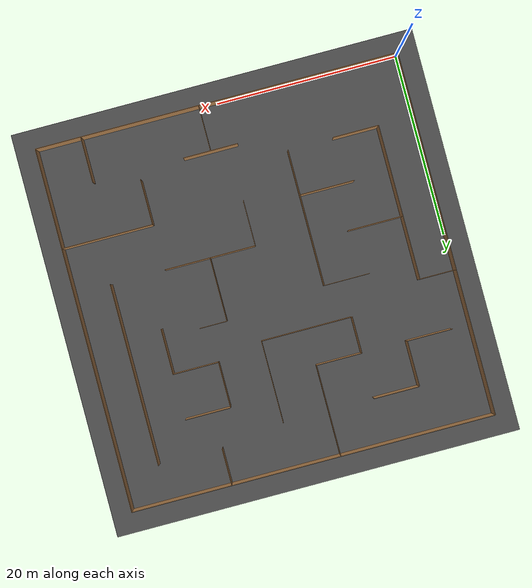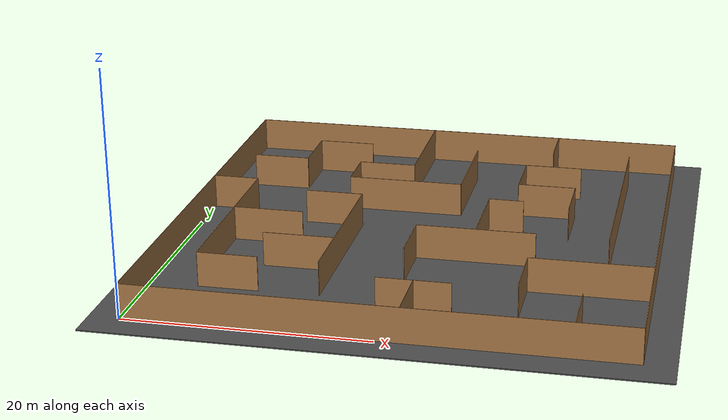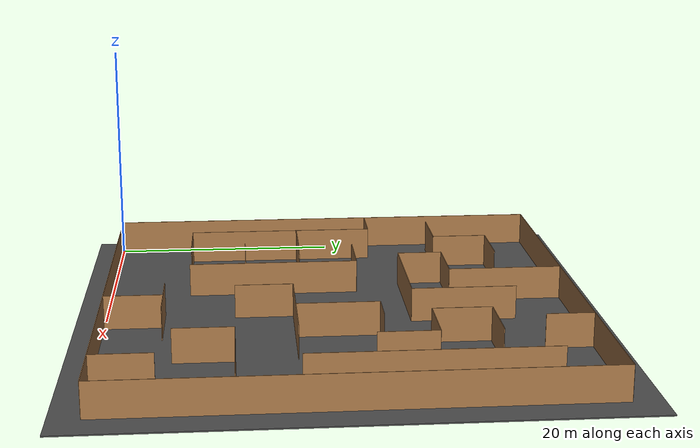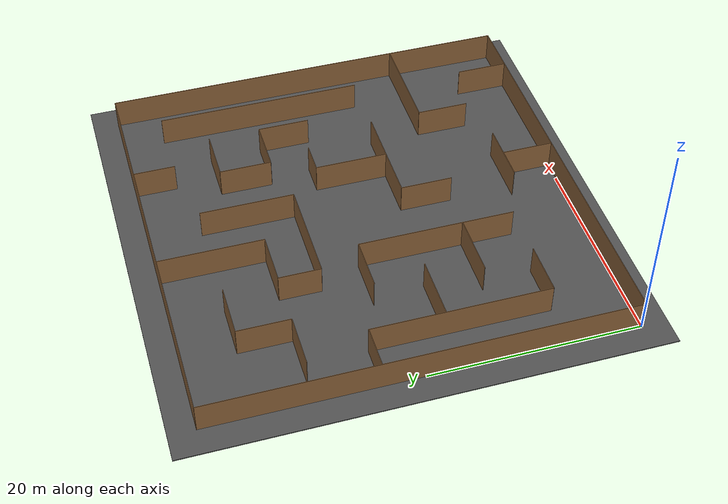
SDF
<sdf version="1.7">
 <world name="default">
  <plugin name="ros_interface_plugin" filename="librotors_gazebo_ros_interface_plugin.so"/>
  <model name="box_34">
   <pose>11 12 1.5 0 0 -3.14159</pose>
   <link name="link">
    <inertial>
     <mass>1</mass>
     <inertia><ixx>0</ixx><ixy>0</ixy><ixz>0</ixz><iyy>0</iyy><iyz>0</iyz><izz>0</izz></inertia>
    </inertial>
    <collision name="collision"><geometry><box><size>6 0.05 3</size></box></geometry></collision>
    <visual name="visual">
     <geometry><box><size>6 0.05 3</size></box></geometry>
     <material>
      <script><name>Gazebo/Wood</name><uri>file://media/materials/scripts/gazebo.material</uri></script>
     </material>
    </visual>
   </link>
   <static>1</static>
  </model>
  <model name="box_33">
   <pose>7 17 1.5 0 -0 0</pose>
   <link name="link">
    <inertial>
     <mass>1</mass>
     <inertia><ixx>0</ixx><ixy>0</ixy><ixz>0</ixz><iyy>0</iyy><iyz>0</iyz><izz>0</izz></inertia>
    </inertial>
    <collision name="collision"><geometry><box><size>6 0.05 3</size></box></geometry></collision>
    <visual name="visual">
     <geometry><box><size>6 0.05 3</size></box></geometry>
     <material>
      <script><name>Gazebo/Wood</name><uri>file://media/materials/scripts/gazebo.material</uri></script>
     </material>
    </visual>
   </link>
   <static>1</static>
  </model>
  <model name="box_32">
   <pose>11.5 22 1.5 0 -0 0</pose>
   <link name="link">
    <inertial>
     <mass>1</mass>
     <inertia><ixx>0</ixx><ixy>0</ixy><ixz>0</ixz><iyy>0</iyy><iyz>0</iyz><izz>0</izz></inertia>
    </inertial>
    <collision name="collision"><geometry><box><size>5 0.05 3</size></box></geometry></collision>
    <visual name="visual">
     <geometry><box><size>5 0.05 3</size></box></geometry>
     <material>
      <script><name>Gazebo/Wood</name><uri>file://media/materials/scripts/gazebo.material</uri></script>
     </material>
    </visual>
   </link>
   <static>1</static>
  </model>
  <model name="box_31">
   <pose>14 14.5 1.5 0 0 -1.5708</pose>
   <link name="link">
    <inertial>
     <mass>1</mass>
     <inertia><ixx>0</ixx><ixy>0</ixy><ixz>0</ixz><iyy>0</iyy><iyz>0</iyz><izz>0</izz></inertia>
    </inertial>
    <collision name="collision"><geometry><box><size>15 0.05 3</size></box></geometry></collision>
    <visual name="visual">
     <geometry><box><size>15 0.05 3</size></box></geometry>
     <material>
      <script><name>Gazebo/Wood</name><uri>file://media/materials/scripts/gazebo.material</uri></script>
     </material>
    </visual>
   </link>
   <static>1</static>
  </model>
  <model name="box_30">
   <pose>6.5 7 1.5 0 0 -3.14159</pose>
   <link name="link">
    <inertial>
     <mass>1</mass>
     <inertia><ixx>0</ixx><ixy>0</ixy><ixz>0</ixz><iyy>0</iyy><iyz>0</iyz><izz>0</izz></inertia>
    </inertial>
    <collision name="collision"><geometry><box><size>5 0.05 3</size></box></geometry></collision>
    <visual name="visual">
     <geometry><box><size>5 0.05 3</size></box></geometry>
     <material>
      <script><name>Gazebo/Wood</name><uri>file://media/materials/scripts/gazebo.material</uri></script>
     </material>
    </visual>
   </link>
   <static>1</static>
  </model>
  <model name="box_29">
   <pose>4 15.5 1.5 0 -0 1.5708</pose>
   <link name="link">
    <inertial>
     <mass>1</mass>
     <inertia><ixx>0</ixx><ixy>0</ixy><ixz>0</ixz><iyy>0</iyy><iyz>0</iyz><izz>0</izz></inertia>
    </inertial>
    <collision name="collision"><geometry><box><size>17 0.05 3</size></box></geometry></collision>
    <visual name="visual">
     <geometry><box><size>17 0.05 3</size></box></geometry>
     <material>
      <script><name>Gazebo/Wood</name><uri>file://media/materials/scripts/gazebo.material</uri></script>
     </material>
    </visual>
   </link>
   <static>1</static>
  </model>
  <model name="box_28">
   <pose>2 24 1.5 0 0 -3.14159</pose>
   <link name="link">
    <inertial>
     <mass>1</mass>
     <inertia><ixx>0</ixx><ixy>0</ixy><ixz>0</ixz><iyy>0</iyy><iyz>0</iyz><izz>0</izz></inertia>
    </inertial>
    <collision name="collision"><geometry><box><size>4 0.05 3</size></box></geometry></collision>
    <visual name="visual">
     <geometry><box><size>4 0.05 3</size></box></geometry>
     <material>
      <script><name>Gazebo/Wood</name><uri>file://media/materials/scripts/gazebo.material</uri></script>
     </material>
    </visual>
   </link>
   <static>1</static>
  </model>
  <model name="box_27">
   <pose>22 5 1.5 0 -0 0</pose>
   <link name="link">
    <inertial>
     <mass>1</mass>
     <inertia><ixx>0</ixx><ixy>0</ixy><ixz>0</ixz><iyy>0</iyy><iyz>0</iyz><izz>0</izz></inertia>
    </inertial>
    <collision name="collision"><geometry><box><size>6 0.05 3</size></box></geometry></collision>
    <visual name="visual">
     <geometry><box><size>6 0.05 3</size></box></geometry>
     <material>
      <script><name>Gazebo/Wood</name><uri>file://media/materials/scripts/gazebo.material</uri></script>
     </material>
    </visual>
   </link>
   <static>1</static>
  </model>
  <model name="box_26">
   <pose>22 2.5 1.5 0 0 -1.5708</pose>
   <link name="link">
    <inertial>
     <mass>1</mass>
     <inertia><ixx>0</ixx><ixy>0</ixy><ixz>0</ixz><iyy>0</iyy><iyz>0</iyz><izz>0</izz></inertia>
    </inertial>
    <collision name="collision"><geometry><box><size>5 0.05 3</size></box></geometry></collision>
    <visual name="visual">
     <geometry><box><size>5 0.05 3</size></box></geometry>
     <material>
      <script><name>Gazebo/Wood</name><uri>file://media/materials/scripts/gazebo.material</uri></script>
     </material>
    </visual>
   </link>
   <static>1</static>
  </model>
  <model name="box_25">
   <pose>35 2.5 1.5 0 0 -1.5708</pose>
   <link name="link">
    <inertial>
     <mass>1</mass>
     <inertia><ixx>0</ixx><ixy>0</ixy><ixz>0</ixz><iyy>0</iyy><iyz>0</iyz><izz>0</izz></inertia>
    </inertial>
    <collision name="collision"><geometry><box><size>5 0.05 3</size></box></geometry></collision>
    <visual name="visual">
     <geometry><box><size>5 0.05 3</size></box></geometry>
     <material>
      <script><name>Gazebo/Wood</name><uri>file://media/materials/scripts/gazebo.material</uri></script>
     </material>
    </visual>
   </link>
   <static>1</static>
  </model>
  <model name="box_24">
   <pose>30 8.5 1.5 0 -0 1.5708</pose>
   <link name="link">
    <inertial>
     <mass>1</mass>
     <inertia><ixx>0</ixx><ixy>0</ixy><ixz>0</ixz><iyy>0</iyy><iyz>0</iyz><izz>0</izz></inertia>
    </inertial>
    <collision name="collision"><geometry><box><size>5 0.05 3</size></box></geometry></collision>
    <visual name="visual">
     <geometry><box><size>5 0.05 3</size></box></geometry>
     <material>
      <script><name>Gazebo/Wood</name><uri>file://media/materials/scripts/gazebo.material</uri></script>
     </material>
    </visual>
   </link>
   <static>1</static>
  </model>
  <model name="box_23">
   <pose>35 11 1.5 0 0 -3.14159</pose>
   <link name="link">
    <inertial>
     <mass>1</mass>
     <inertia><ixx>0</ixx><ixy>0</ixy><ixz>0</ixz><iyy>0</iyy><iyz>0</iyz><izz>0</izz></inertia>
    </inertial>
    <collision name="collision"><geometry><box><size>10 0.05 3</size></box></geometry></collision>
    <visual name="visual">
     <geometry><box><size>10 0.05 3</size></box></geometry>
     <material>
      <script><name>Gazebo/Wood</name><uri>file://media/materials/scripts/gazebo.material</uri></script>
     </material>
    </visual>
   </link>
   <static>1</static>
  </model>
  <model name="box_22">
   <pose>20 13.5 1.5 0 -0 1.5708</pose>
   <link name="link">
    <inertial>
     <mass>1</mass>
     <inertia><ixx>0</ixx><ixy>0</ixy><ixz>0</ixz><iyy>0</iyy><iyz>0</iyz><izz>0</izz></inertia>
    </inertial>
    <collision name="collision"><geometry><box><size>5 0.05 3</size></box></geometry></collision>
    <visual name="visual">
     <geometry><box><size>5 0.05 3</size></box></geometry>
     <material>
      <script><name>Gazebo/Wood</name><uri>file://media/materials/scripts/gazebo.material</uri></script>
     </material>
    </visual>
   </link>
   <static>1</static>
  </model>
  <model name="box_21">
   <pose>26.5 23 1.5 0 0 -3.14159</pose>
   <link name="link">
    <inertial>
     <mass>1</mass>
     <inertia><ixx>0</ixx><ixy>0</ixy><ixz>0</ixz><iyy>0</iyy><iyz>0</iyz><izz>0</izz></inertia>
    </inertial>
    <collision name="collision"><geometry><box><size>3 0.05 3</size></box></geometry></collision>
    <visual name="visual">
     <geometry><box><size>3 0.05 3</size></box></geometry>
     <material>
      <script><name>Gazebo/Wood</name><uri>file://media/materials/scripts/gazebo.material</uri></script>
     </material>
    </visual>
   </link>
   <static>1</static>
  </model>
  <model name="box_20">
   <pose>25 19.5 1.5 0 0 -1.5708</pose>
   <link name="link">
    <inertial>
     <mass>1</mass>
     <inertia><ixx>0</ixx><ixy>0</ixy><ixz>0</ixz><iyy>0</iyy><iyz>0</iyz><izz>0</izz></inertia>
    </inertial>
    <collision name="collision"><geometry><box><size>7 0.05 3</size></box></geometry></collision>
    <visual name="visual">
     <geometry><box><size>7 0.05 3</size></box></geometry>
     <material>
      <script><name>Gazebo/Wood</name><uri>file://media/materials/scripts/gazebo.material</uri></script>
     </material>
    </visual>
   </link>
   <static>1</static>
  </model>
  <model name="box_19">
   <pose>25 16 1.5 0 -0 0</pose>
   <link name="link">
    <inertial>
     <mass>1</mass>
     <inertia><ixx>0</ixx><ixy>0</ixy><ixz>0</ixz><iyy>0</iyy><iyz>0</iyz><izz>0</izz></inertia>
    </inertial>
    <collision name="collision"><geometry><box><size>10 0.05 3</size></box></geometry></collision>
    <visual name="visual">
     <geometry><box><size>10 0.05 3</size></box></geometry>
     <material>
      <script><name>Gazebo/Wood</name><uri>file://media/materials/scripts/gazebo.material</uri></script>
     </material>
    </visual>
   </link>
   <static>1</static>
  </model>
  <model name="box_18">
   <pose>32 24.5 1.5 0 -0 1.5708</pose>
   <link name="link">
    <inertial>
     <mass>1</mass>
     <inertia><ixx>0</ixx><ixy>0</ixy><ixz>0</ixz><iyy>0</iyy><iyz>0</iyz><izz>0</izz></inertia>
    </inertial>
    <collision name="collision"><geometry><box><size>5 0.05 3</size></box></geometry></collision>
    <visual name="visual">
     <geometry><box><size>5 0.05 3</size></box></geometry>
     <material>
      <script><name>Gazebo/Wood</name><uri>file://media/materials/scripts/gazebo.material</uri></script>
     </material>
    </visual>
   </link>
   <static>1</static>
  </model>
  <model name="box_17">
   <pose>29.5 27 1.5 0 0 -3.14159</pose>
   <link name="link">
    <inertial>
     <mass>1</mass>
     <inertia><ixx>0</ixx><ixy>0</ixy><ixz>0</ixz><iyy>0</iyy><iyz>0</iyz><izz>0</izz></inertia>
    </inertial>
    <collision name="collision"><geometry><box><size>5 0.05 3</size></box></geometry></collision>
    <visual name="visual">
     <geometry><box><size>5 0.05 3</size></box></geometry>
     <material>
      <script><name>Gazebo/Wood</name><uri>file://media/materials/scripts/gazebo.material</uri></script>
     </material>
    </visual>
   </link>
   <static>1</static>
  </model>
  <model name="box_16">
   <pose>27 29.5 1.5 0 -0 1.5708</pose>
   <link name="link">
    <inertial>
     <mass>1</mass>
     <inertia><ixx>0</ixx><ixy>0</ixy><ixz>0</ixz><iyy>0</iyy><iyz>0</iyz><izz>0</izz></inertia>
    </inertial>
    <collision name="collision"><geometry><box><size>5 0.05 3</size></box></geometry></collision>
    <visual name="visual">
     <geometry><box><size>5 0.05 3</size></box></geometry>
     <material>
      <script><name>Gazebo/Wood</name><uri>file://media/materials/scripts/gazebo.material</uri></script>
     </material>
    </visual>
   </link>
   <static>1</static>
  </model>
  <model name="box_15">
   <pose>29.5 32 1.5 0 -0 0</pose>
   <link name="link">
    <inertial>
     <mass>1</mass>
     <inertia><ixx>0</ixx><ixy>0</ixy><ixz>0</ixz><iyy>0</iyy><iyz>0</iyz><izz>0</izz></inertia>
    </inertial>
    <collision name="collision"><geometry><box><size>5 0.05 3</size></box></geometry></collision>
    <visual name="visual">
     <geometry><box><size>5 0.05 3</size></box></geometry>
     <material>
      <script><name>Gazebo/Wood</name><uri>file://media/materials/scripts/gazebo.material</uri></script>
     </material>
    </visual>
   </link>
   <static>1</static>
  </model>
  <model name="box_14">
   <pose>22 30.5 1.5 0 0 -1.5708</pose>
   <link name="link">
    <inertial>
     <mass>1</mass>
     <inertia><ixx>0</ixx><ixy>0</ixy><ixz>0</ixz><iyy>0</iyy><iyz>0</iyz><izz>0</izz></inertia>
    </inertial>
    <collision name="collision"><geometry><box><size>9 0.05 3</size></box></geometry></collision>
    <visual name="visual">
     <geometry><box><size>9 0.05 3</size></box></geometry>
     <material>
      <script><name>Gazebo/Wood</name><uri>file://media/materials/scripts/gazebo.material</uri></script>
     </material>
    </visual>
   </link>
   <static>1</static>
  </model>
  <model name="box_13">
   <pose>17 26 1.5 0 0 -3.14159</pose>
   <link name="link">
    <inertial>
     <mass>1</mass>
     <inertia><ixx>0</ixx><ixy>0</ixy><ixz>0</ixz><iyy>0</iyy><iyz>0</iyz><izz>0</izz></inertia>
    </inertial>
    <collision name="collision"><geometry><box><size>10 0.05 3</size></box></geometry></collision>
    <visual name="visual">
     <geometry><box><size>10 0.05 3</size></box></geometry>
     <material>
      <script><name>Gazebo/Wood</name><uri>file://media/materials/scripts/gazebo.material</uri></script>
     </material>
    </visual>
   </link>
   <static>1</static>
  </model>
  <model name="box_12">
   <pose>12 28 1.5 0 -0 1.5708</pose>
   <link name="link">
    <inertial>
     <mass>1</mass>
     <inertia><ixx>0</ixx><ixy>0</ixy><ixz>0</ixz><iyy>0</iyy><iyz>0</iyz><izz>0</izz></inertia>
    </inertial>
    <collision name="collision"><geometry><box><size>4 0.05 3</size></box></geometry></collision>
    <visual name="visual">
     <geometry><box><size>4 0.05 3</size></box></geometry>
     <material>
      <script><name>Gazebo/Wood</name><uri>file://media/materials/scripts/gazebo.material</uri></script>
     </material>
    </visual>
   </link>
   <static>1</static>
  </model>
  <model name="box_11">
   <pose>14.5 30 1.5 0 -0 0</pose>
   <link name="link">
    <inertial>
     <mass>1</mass>
     <inertia><ixx>0</ixx><ixy>0</ixy><ixz>0</ixz><iyy>0</iyy><iyz>0</iyz><izz>0</izz></inertia>
    </inertial>
    <collision name="collision"><geometry><box><size>5 0.05 3</size></box></geometry></collision>
    <visual name="visual">
     <geometry><box><size>5 0.05 3</size></box></geometry>
     <material>
      <script><name>Gazebo/Wood</name><uri>file://media/materials/scripts/gazebo.material</uri></script>
     </material>
    </visual>
   </link>
   <static>1</static>
  </model>
  <model name="box_10">
   <pose>17 35 1.5 0 -0 1.5708</pose>
   <link name="link">
    <inertial>
     <mass>1</mass>
     <inertia><ixx>0</ixx><ixy>0</ixy><ixz>0</ixz><iyy>0</iyy><iyz>0</iyz><izz>0</izz></inertia>
    </inertial>
    <collision name="collision"><geometry><box><size>10 0.05 3</size></box></geometry></collision>
    <visual name="visual">
     <geometry><box><size>10 0.05 3</size></box></geometry>
     <material>
      <script><name>Gazebo/Wood</name><uri>file://media/materials/scripts/gazebo.material</uri></script>
     </material>
    </visual>
   </link>
   <static>1</static>
  </model>
  <model name="box_9">
   <pose>29 38 1.5 0 -0 1.5708</pose>
   <link name="link">
    <inertial>
     <mass>1</mass>
     <inertia><ixx>0</ixx><ixy>0</ixy><ixz>0</ixz><iyy>0</iyy><iyz>0</iyz><izz>0</izz></inertia>
    </inertial>
    <collision name="collision"><geometry><box><size>4 0.05 3</size></box></geometry></collision>
    <visual name="visual">
     <geometry><box><size>4 0.05 3</size></box></geometry>
     <material>
      <script><name>Gazebo/Wood</name><uri>file://media/materials/scripts/gazebo.material</uri></script>
     </material>
    </visual>
   </link>
   <static>1</static>
  </model>
  <model name="box_8">
   <pose>36 26 1.5 0 -0 1.5708</pose>
   <link name="link">
    <inertial>
     <mass>1</mass>
     <inertia><ixx>0</ixx><ixy>0</ixy><ixz>0</ixz><iyy>0</iyy><iyz>0</iyz><izz>0</izz></inertia>
    </inertial>
    <collision name="collision"><geometry><box><size>20 0.05 3</size></box></geometry></collision>
    <visual name="visual">
     <geometry><box><size>20 0.05 3</size></box></geometry>
     <material>
      <script><name>Gazebo/Wood</name><uri>file://media/materials/scripts/gazebo.material</uri></script>
     </material>
    </visual>
   </link>
   <static>1</static>
  </model>
  <model name="box_7">
   <pose>9.5 35 1.5 0 0 -3.14159</pose>
   <link name="link">
    <inertial>
     <mass>1</mass>
     <inertia><ixx>0</ixx><ixy>0</ixy><ixz>0</ixz><iyy>0</iyy><iyz>0</iyz><izz>0</izz></inertia>
    </inertial>
    <collision name="collision"><geometry><box><size>5 0.05 3</size></box></geometry></collision>
    <visual name="visual">
     <geometry><box><size>5 0.05 3</size></box></geometry>
     <material>
      <script><name>Gazebo/Wood</name><uri>file://media/materials/scripts/gazebo.material</uri></script>
     </material>
    </visual>
   </link>
   <static>1</static>
  </model>
  <model name="box_6">
   <pose>7 32.5 1.5 0 0 -1.5708</pose>
   <link name="link">
    <inertial>
     <mass>1</mass>
     <inertia><ixx>0</ixx><ixy>0</ixy><ixz>0</ixz><iyy>0</iyy><iyz>0</iyz><izz>0</izz></inertia>
    </inertial>
    <collision name="collision"><geometry><box><size>5 0.05 3</size></box></geometry></collision>
    <visual name="visual">
     <geometry><box><size>5 0.05 3</size></box></geometry>
     <material>
      <script><name>Gazebo/Wood</name><uri>file://media/materials/scripts/gazebo.material</uri></script>
     </material>
    </visual>
   </link>
   <static>1</static>
  </model>
  <model name="box_5">
   <pose>4.5 30 1.5 0 0 -3.14159</pose>
   <link name="link">
    <inertial>
     <mass>1</mass>
     <inertia><ixx>0</ixx><ixy>0</ixy><ixz>0</ixz><iyy>0</iyy><iyz>0</iyz><izz>0</izz></inertia>
    </inertial>
    <collision name="collision"><geometry><box><size>5 0.05 3</size></box></geometry></collision>
    <visual name="visual">
     <geometry><box><size>5 0.05 3</size></box></geometry>
     <material>
      <script><name>Gazebo/Wood</name><uri>file://media/materials/scripts/gazebo.material</uri></script>
     </material>
    </visual>
   </link>
   <static>1</static>
  </model>
  <model name="box_4">
   <pose>0 20 1.5 0 -0 1.5708</pose>
   <link name="link">
    <inertial>
     <mass>1</mass>
     <inertia><ixx>0</ixx><ixy>0</ixy><ixz>0</ixz><iyy>0</iyy><iyz>0</iyz><izz>0</izz></inertia>
    </inertial>
    <collision name="collision"><geometry><box><size>40 0.05 3</size></box></geometry></collision>
    <visual name="visual">
     <geometry><box><size>40 0.05 3</size></box></geometry>
     <material>
      <script><name>Gazebo/Wood</name><uri>file://media/materials/scripts/gazebo.material</uri></script>
     </material>
    </visual>
   </link>
   <static>1</static>
  </model>
  <model name="box_3">
   <pose>20 40 1.5 0 -0 0</pose>
   <link name="link">
    <inertial>
     <mass>1</mass>
     <inertia><ixx>0</ixx><ixy>0</ixy><ixz>0</ixz><iyy>0</iyy><iyz>0</iyz><izz>0</izz></inertia>
    </inertial>
    <collision name="collision"><geometry><box><size>40 0.05 3</size></box></geometry></collision>
    <visual name="visual">
     <geometry><box><size>40 0.05 3</size></box></geometry>
     <material>
      <script><name>Gazebo/Wood</name><uri>file://media/materials/scripts/gazebo.material</uri></script>
     </material>
    </visual>
   </link>
   <static>1</static>
  </model>
  <model name="box_2">
   <pose>40 20 1.5 0 0 -1.5708</pose>
   <link name="link">
    <inertial>
     <mass>1</mass>
     <inertia><ixx>0</ixx><ixy>0</ixy><ixz>0</ixz><iyy>0</iyy><iyz>0</iyz><izz>0</izz></inertia>
    </inertial>
    <collision name="collision"><geometry><box><size>40 0.05 3</size></box></geometry></collision>
    <visual name="visual">
     <geometry><box><size>40 0.05 3</size></box></geometry>
     <material>
      <script><name>Gazebo/Wood</name><uri>file://media/materials/scripts/gazebo.material</uri></script>
     </material>
    </visual>
   </link>
   <static>1</static>
  </model>
  <model name="box_1">
   <pose>20 0 1.5 0 0 -3.14159</pose>
   <link name="link">
    <inertial>
     <mass>1</mass>
     <inertia><ixx>0</ixx><ixy>0</ixy><ixz>0</ixz><iyy>0</iyy><iyz>0</iyz><izz>0</izz></inertia>
    </inertial>
    <collision name="collision"><geometry><box><size>40 0.05 3</size></box></geometry></collision>
    <visual name="visual">
     <geometry><box><size>40 0.05 3</size></box></geometry>
     <material>
      <script><name>Gazebo/Wood</name><uri>file://media/materials/scripts/gazebo.material</uri></script>
     </material>
    </visual>
   </link>
   <static>1</static>
  </model>
  <light name="user_point_light_0" type="point">
   <pose>0 0 5 0 -0 0</pose>
   <diffuse>0.5 0.5 0.5 1</diffuse>
   <specular>0.1 0.1 0.1 1</specular>
   <attenuation>
    <range>1000</range>
    <constant>0.05</constant>
    <linear>0.01</linear>
    <quadratic>0.001</quadratic>
   </attenuation>
   <cast_shadows>0</cast_shadows>
   <direction>0 0 -1</direction>
   <spot><inner_angle>0</inner_angle><outer_angle>0</outer_angle><falloff>0</falloff></spot>
  </light>
  <light name="user_point_light_1" type="point">
   <pose>20 0 5 0 -0 0</pose>
   <diffuse>0.5 0.5 0.5 1</diffuse>
   <specular>0.1 0.1 0.1 1</specular>
   <attenuation>
    <range>1000</range>
    <constant>0.05</constant>
    <linear>0.01</linear>
    <quadratic>0.001</quadratic>
   </attenuation>
   <cast_shadows>0</cast_shadows>
   <direction>0 0 -1</direction>
   <spot><inner_angle>0</inner_angle><outer_angle>0</outer_angle><falloff>0</falloff></spot>
  </light>
  <light name="user_point_light_2" type="point">
   <pose>0 20 5 0 -0 0</pose>
   <diffuse>0.5 0.5 0.5 1</diffuse>
   <specular>0.1 0.1 0.1 1</specular>
   <attenuation>
    <range>1000</range>
    <constant>0.05</constant>
    <linear>0.01</linear>
    <quadratic>0.001</quadratic>
   </attenuation>
   <cast_shadows>0</cast_shadows>
   <direction>0 0 -1</direction>
   <spot><inner_angle>0</inner_angle><outer_angle>0</outer_angle><falloff>0</falloff></spot>
  </light>
  <light name="user_point_light_3" type="point">
   <pose>20 20 5 0 -0 0</pose>
   <diffuse>0.5 0.5 0.5 1</diffuse>
   <specular>0.1 0.1 0.1 1</specular>
   <attenuation>
    <range>1000</range>
    <constant>0.05</constant>
    <linear>0.01</linear>
    <quadratic>0.001</quadratic>
   </attenuation>
   <cast_shadows>0</cast_shadows>
   <direction>0 0 -1</direction>
   <spot><inner_angle>0</inner_angle><outer_angle>0</outer_angle><falloff>0</falloff></spot>
  </light>
  <light name="user_point_light_4" type="point">
   <pose>10 10 5 0 -0 0</pose>
   <diffuse>0.5 0.5 0.5 1</diffuse>
   <specular>0.1 0.1 0.1 1</specular>
   <attenuation>
    <range>1000</range>
    <constant>0.05</constant>
    <linear>0.01</linear>
    <quadratic>0.001</quadratic>
   </attenuation>
   <cast_shadows>0</cast_shadows>
   <direction>0 0 -1</direction>
   <spot><inner_angle>0</inner_angle><outer_angle>0</outer_angle><falloff>0</falloff></spot>
  </light>
  <light name="user_point_light_5" type="point">
   <pose>10 10 5 0 -0 0</pose>
   <diffuse>0.5 0.5 0.5 1</diffuse>
   <specular>0.1 0.1 0.1 1</specular>
   <attenuation>
    <range>1000</range>
    <constant>0.05</constant>
    <linear>0.01</linear>
    <quadratic>0.001</quadratic>
   </attenuation>
   <cast_shadows>0</cast_shadows>
   <direction>0 0 -1</direction>
   <spot><inner_angle>0</inner_angle><outer_angle>0</outer_angle><falloff>0</falloff></spot>
  </light>
  <light name="user_point_light_6" type="point">
   <pose>10 10 5 0 -0 0</pose>
   <diffuse>0.5 0.5 0.5 1</diffuse>
   <specular>0.1 0.1 0.1 1</specular>
   <attenuation>
    <range>1000</range>
    <constant>0.05</constant>
    <linear>0.01</linear>
    <quadratic>0.001</quadratic>
   </attenuation>
   <cast_shadows>0</cast_shadows>
   <direction>0 0 -1</direction>
   <spot><inner_angle>0</inner_angle><outer_angle>0</outer_angle><falloff>0</falloff></spot>
  </light>
  <light name="user_point_light_7" type="point">
   <pose>10 10 5 0 -0 0</pose>
   <diffuse>0.5 0.5 0.5 1</diffuse>
   <specular>0.1 0.1 0.1 1</specular>
   <attenuation>
    <range>1000</range>
    <constant>0.05</constant>
    <linear>0.01</linear>
    <quadratic>0.001</quadratic>
   </attenuation>
   <cast_shadows>0</cast_shadows>
   <direction>0 0 -1</direction>
   <spot><inner_angle>0</inner_angle><outer_angle>0</outer_angle><falloff>0</falloff></spot>
  </light>
  <light name="user_point_light_8" type="point">
   <pose>10 10 5 0 -0 0</pose>
   <diffuse>0.5 0.5 0.5 1</diffuse>
   <specular>0.1 0.1 0.1 1</specular>
   <attenuation>
    <range>1000</range>
    <constant>0.05</constant>
    <linear>0.01</linear>
    <quadratic>0.001</quadratic>
   </attenuation>
   <cast_shadows>0</cast_shadows>
   <direction>0 0 -1</direction>
   <spot><inner_angle>0</inner_angle><outer_angle>0</outer_angle><falloff>0</falloff></spot>
  </light>
  <light name="user_point_light_9" type="point">
   <pose>10 10 5 0 -0 0</pose>
   <diffuse>0.5 0.5 0.5 1</diffuse>
   <specular>0.1 0.1 0.1 1</specular>
   <attenuation>
    <range>1000</range>
    <constant>0.05</constant>
    <linear>0.01</linear>
    <quadratic>0.001</quadratic>
   </attenuation>
   <cast_shadows>0</cast_shadows>
   <direction>0 0 -1</direction>
   <spot><inner_angle>0</inner_angle><outer_angle>0</outer_angle><falloff>0</falloff></spot>
  </light>
  <light name="user_point_light_10" type="point">
   <pose>10 10 5 0 -0 0</pose>
   <diffuse>0.5 0.5 0.5 1</diffuse>
   <specular>0.1 0.1 0.1 1</specular>
   <attenuation>
    <range>1000</range>
    <constant>0.05</constant>
    <linear>0.01</linear>
    <quadratic>0.001</quadratic>
   </attenuation>
   <cast_shadows>0</cast_shadows>
   <direction>0 0 -1</direction>
   <spot><inner_angle>0</inner_angle><outer_angle>0</outer_angle><falloff>0</falloff></spot>
  </light>
  <light name="user_point_light_11" type="point">
   <pose>10 10 5 0 -0 0</pose>
   <diffuse>0.5 0.5 0.5 1</diffuse>
   <specular>0.1 0.1 0.1 1</specular>
   <attenuation>
    <range>1000</range>
    <constant>0.05</constant>
    <linear>0.01</linear>
    <quadratic>0.001</quadratic>
   </attenuation>
   <cast_shadows>0</cast_shadows>
   <direction>0 0 -1</direction>
   <spot><inner_angle>0</inner_angle><outer_angle>0</outer_angle><falloff>0</falloff></spot>
  </light>
  <light name="user_point_light_12" type="point">
   <pose>10 10 5 0 -0 0</pose>
   <diffuse>0.5 0.5 0.5 1</diffuse>
   <specular>0.1 0.1 0.1 1</specular>
   <attenuation>
    <range>1000</range>
    <constant>0.05</constant>
    <linear>0.01</linear>
    <quadratic>0.001</quadratic>
   </attenuation>
   <cast_shadows>0</cast_shadows>
   <direction>0 0 -1</direction>
   <spot><inner_angle>0</inner_angle><outer_angle>0</outer_angle><falloff>0</falloff></spot>
  </light>
  <gravity>0 0 -9.8</gravity>
  <magnetic_field>6e-06 2.3e-05 -4.2e-05</magnetic_field>
  <atmosphere type="adiabatic"/>
  <physics name="default_physics" default="0" type="ode">
   <max_step_size>0.001</max_step_size>
   <real_time_factor>1</real_time_factor>
   <real_time_update_rate>1000</real_time_update_rate>
  </physics>
  <scene><ambient>0.4 0.4 0.4 1</ambient><background>0.7 0.7 0.7 1</background><shadows>1</shadows></scene>
  <audio><device>default</device></audio>
  <spherical_coordinates>
   <surface_model>EARTH_WGS84</surface_model>
   <latitude_deg>0</latitude_deg>
   <longitude_deg>0</longitude_deg>
   <elevation>0</elevation>
   <heading_deg>0</heading_deg>
  </spherical_coordinates>
  <model name="asphalt_plane">
   <static>1</static>
   <link name="link">
    <collision name="collision"><geometry><box><size>1 1 0.1</size></box></geometry></collision>
    <visual name="visual">
     <cast_shadows>0</cast_shadows>
     <geometry><box><size>45 45 0.1</size></box></geometry>
     <material>
      <script>
       <uri>model://asphalt_plane/materials/scripts</uri>
       <uri>model://asphalt_plane/materials/textures</uri>
       <name>vrc/asphalt</name>
      </script>
     </material>
    </visual>
   </link>
   <pose>20. 20. 0 0 -0 0</pose>
  </model>
 </world>
</sdf>
